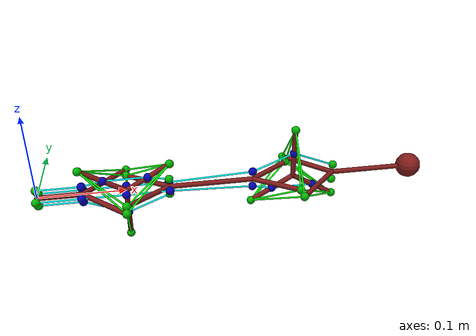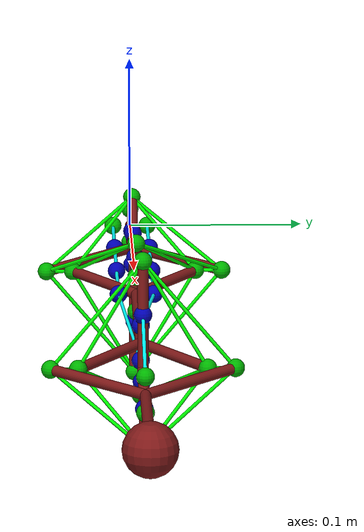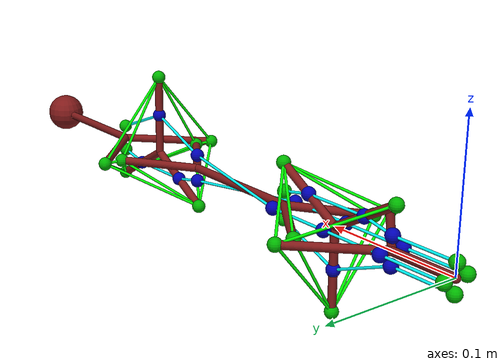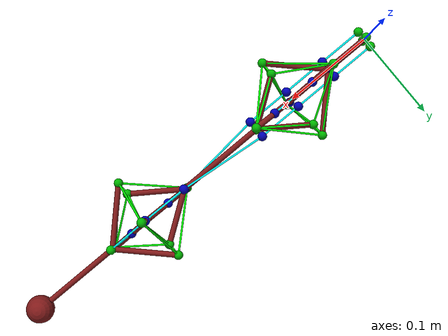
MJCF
<!-- Antoine Vincent Martin
-->

<mujoco model="Tensegrity Leg">
  <option timestep="0.005" iterations="50" integrator="RK4" tolerance="1e-10"/>

  <default>
    <joint type="ball"/>
    <muscle ctrllimited="true" ctrlrange="-1000 1000"/>
    <geom size="0.003" mass="0.05" rgba=".5 .1 .1 1"/>
    <site size="0.005" rgba="0 .7 0 1"/>
    <tendon rgba="0 1 0 1" stiffness="1000" damping="15"/>
  </default>

  <asset>
    <texture name="texplane" type="2d" builtin="checker" rgb1=".25 .25 .25" rgb2=".28 .28 .28" width="512" height="512" markrgb=".8 .8 .8"/>
    <texture name="skybox" type="skybox" builtin="gradient" rgb1="1 1 1" rgb2="1 1 1" width="800" height="800" mark="none" markrgb="1 1 1"/>
		<material name="matplane" reflectance="0.1" texture="texplane" texrepeat="1 1" texuniform="true"/>
  </asset>

  <worldbody>
    <light directional="true" diffuse=".8 .8 .8" specular=".2 .2 .2" pos="0 0 5" dir="0 0 -1"/>

    <!--FORK-->
    <geom type="capsule" fromto="0    0 0  0.05 0    0"/>
    <geom type="capsule" fromto="0.05 0 0  0.1  0.05 0"/>
    <geom type="capsule" fromto="0.05 0 0  0.1 -0.05 0"/>

    <!--QUAD FORK START-->
    <site name="y0_0" pos="0  0.01  0   "/>
    <site name="y0_1" pos="0 -0.01  0   "/>
    <site name="y0_2" pos="0  0     0.01"/>
    <site name="y0_3" pos="0  0    -0.01"/>

    <!--QUAD FORK MIDDLE-->
    <site name="y0_4" pos="0.05  0.01  0   " rgba="0 0 .7 1"/>
    <site name="y0_5" pos="0.05 -0.01  0   " rgba="0 0 .7 1"/>
    <site name="y0_6" pos="0.05  0     0.01" rgba="0 0 .7 1"/>
    <site name="y0_7" pos="0.05  0    -0.01" rgba="0 0 .7 1"/>

    <!--QUAD FORK END-->
    <site name="y0_8" pos="0.1  0.05 0"/>
    <site name="y0_9" pos="0.1 -0.05 0"/>

    <body pos="0.1 0 0">
      <joint type="free"/>
      <geom type="capsule" fromto="0 0 0   0.05156 0  0.03"/>
      <geom type="capsule" fromto="0 0 0   0       0 -0.06"/>
      <geom type="capsule" fromto="0 0 0  -0.05156 0  0.03"/>

      <site name="x0_1"  pos=" 0.05156 0  0.03 "/>
      <site name="x0_2"  pos=" 0       0 -0.06 "/>
      <site name="x0_3"  pos="-0.05156 0  0.03 "/>

      <!--STAR MUSCLE'S TENDONS VIAS-->
      <site name="x0_0v" pos=" 0       -0.01  0    " rgba="0 0 .7 1"/>
      <site name="x0_1v" pos=" 0        0.01  0    " rgba="0 0 .7 1"/>
      <site name="x0_2v" pos=" 0.02578  0     0.015" rgba="0 0 .7 1"/>
      <site name="x0_3v" pos=" 0        0    -0.03 " rgba="0 0 .7 1"/>
      <site name="x0_4v" pos="-0.02578  0     0.015" rgba="0 0 .7 1"/>
    </body>

    <body pos="0.25 0 0" euler="0 0 180">
      <joint type="free"/>
      <geom type="capsule" fromto="0   0 0   0.1   0     0"/>
      <geom type="capsule" fromto="0.1 0 0   0.15  0.035 0"/>
      <geom type="capsule" fromto="0.1 0 0   0.15 -0.035 0"/>
      <geom type="capsule" fromto="0   0 0  -0.05  0.035 0"/>
      <geom type="capsule" fromto="0   0 0  -0.05 -0.035 0"/>

      <!--QUAD FORK MIDDLE-->
      <site name="y1_4" pos="0.1  0.01  0   " rgba="0 0 .7 1"/>
      <site name="y1_5" pos="0.1 -0.01  0   " rgba="0 0 .7 1"/>
      <site name="y1_6" pos="0.1  0     0.01"/>
      <site name="y1_7" pos="0.1  0    -0.01"/>
      <site name="y1_8" pos="0    0     0.01" rgba="0 0 .7 1"/>
      <site name="y1_9" pos="0    0    -0.01" rgba="0 0 .7 1"/>

      <!--QUAD FORK END-->
      <site name="y1_A" pos=" 0.15  0.035 0"/>
      <site name="y1_B" pos=" 0.15 -0.035 0"/>
      <site name="y1_C" pos="-0.05  0.035 0"/>
      <site name="y1_D" pos="-0.05 -0.035 0"/>
    </body>

    <body pos="0.3 0 0" euler="180 0 0">
      <joint type="free"/>
      <geom type="capsule" fromto="0 0 0   0.05156 0  0.03"/>
      <geom type="capsule" fromto="0 0 0   0       0 -0.06"/>
      <geom type="capsule" fromto="0 0 0  -0.05156 0  0.03"/>

      <site name="x1_1"  pos=" 0.05156 0  0.03 "/>
      <site name="x1_2"  pos=" 0       0 -0.06 "/>
      <site name="x1_3"  pos="-0.05156 0  0.03 "/>

      <!--STAR MUSCLE'S TENDONS VIAS-->
      <site name="x1_2v" pos=" 0.02578  0     0.015" rgba="0 0 .7 1"/>
      <site name="x1_3v" pos=" 0        0    -0.03 " rgba="0 0 .7 1"/>
      <site name="x1_4v" pos="-0.02578  0     0.015" rgba="0 0 .7 1"/>
    </body>

    <body pos="0.45 0 0" euler="0 0 180">
      <joint type="free"/>
      <geom type="capsule" fromto="0   0 0  0.1   0    0"/>
      <geom type="capsule" fromto="0.1 0 0  0.15  0.05 0"/>
      <geom type="capsule" fromto="0.1 0 0  0.15 -0.05 0"/>
      <geom type="sphere"  pos="0 0 0" size="0.015"/>

      <!--QUAD FORK END-->
      <site name="y2_0" pos=" 0.15  0.05 0"/>
      <site name="y2_1" pos=" 0.15 -0.05 0"/>

      <!--QUAD FORK MIDDLE-->
      <site name="y2_2" pos="0.1  0     0.01"/>
      <site name="y2_3" pos="0.1  0    -0.01"/>
    </body>
  </worldbody>

  <tendon>
    <spatial limited="true" range="-0.01 0.01" group="0" name="J0_0" width="0.001">
      <site site="x0_1"/> <site site="y0_8"/>
    </spatial>
    <spatial limited="true" range="-0.01 0.01" group="0" name="J0_1" width="0.001">
      <site site="x0_1"/> <site site="y0_9"/>
    </spatial>
    <spatial limited="true" range="-0.01 0.01" group="0" name="J0_2" width="0.001">
      <site site="x0_1"/> <site site="y1_A"/>
    </spatial>
    <spatial limited="true" range="-0.01 0.01" group="0" name="J0_3" width="0.001">
      <site site="x0_1"/> <site site="y1_B"/>
    </spatial>

    <spatial limited="true" range="-0.01 0.01" group="0" name="J0_4" width="0.001">
      <site site="x0_2"/> <site site="y0_8"/>
    </spatial>
    <spatial limited="true" range="-0.01 0.01" group="0" name="J0_5" width="0.001">
      <site site="x0_2"/> <site site="y0_9"/>
    </spatial>
    <spatial limited="true" range="-0.01 0.01" group="0" name="J0_6" width="0.001">
      <site site="x0_2"/> <site site="y1_A"/>
    </spatial>
    <spatial limited="true" range="-0.01 0.01" group="0" name="J0_7" width="0.001">
      <site site="x0_2"/> <site site="y1_B"/>
    </spatial>

    <spatial limited="true" range="-0.01 0.01" group="0" name="J0_8" width="0.001">
      <site site="x0_3"/> <site site="y0_8"/>
    </spatial>
    <spatial limited="true" range="-0.01 0.01" group="0" name="J0_9" width="0.001">
      <site site="x0_3"/> <site site="y0_9"/>
    </spatial>
    <spatial limited="true" range="-0.01 0.01" group="0" name="J0_A" width="0.001">
      <site site="x0_3"/> <site site="y1_A"/>
    </spatial>
    <spatial limited="true" range="-0.01 0.01" group="0" name="J0_B" width="0.001">
      <site site="x0_3"/> <site site="y1_B"/>
    </spatial>

    <spatial limited="true" range="-0.01 0.01" group="0" name="J1_0" width="0.001">
      <site site="x1_1"/> <site site="y2_0"/>
    </spatial>
    <spatial limited="true" range="-0.01 0.01" group="0" name="J1_1" width="0.001">
      <site site="x1_1"/> <site site="y2_1"/>
    </spatial>
    <spatial limited="true" range="-0.01 0.01" group="0" name="J1_2" width="0.001">
      <site site="x1_1"/> <site site="y1_C"/>
    </spatial>
    <spatial limited="true" range="-0.01 0.01" group="0" name="J1_3" width="0.001">
      <site site="x1_1"/> <site site="y1_D"/>
    </spatial>

    <spatial limited="true" range="-0.01 0.01" group="0" name="J1_4" width="0.001">
      <site site="x1_2"/> <site site="y2_0"/>
    </spatial>
    <spatial limited="true" range="-0.01 0.01" group="0" name="J1_5" width="0.001">
      <site site="x1_2"/> <site site="y2_1"/>
    </spatial>
    <spatial limited="true" range="-0.01 0.01" group="0" name="J1_6" width="0.001">
      <site site="x1_2"/> <site site="y1_C"/>
    </spatial>
    <spatial limited="true" range="-0.01 0.01" group="0" name="J1_7" width="0.001">
      <site site="x1_2"/> <site site="y1_D"/>
    </spatial>

    <spatial limited="true" range="-0.01 0.01" group="0" name="J1_8" width="0.001">
      <site site="x1_3"/> <site site="y2_0"/>
    </spatial>
    <spatial limited="true" range="-0.01 0.01" group="0" name="J1_9" width="0.001">
      <site site="x1_3"/> <site site="y2_1"/>
    </spatial>
    <spatial limited="true" range="-0.01 0.01" group="0" name="J1_A" width="0.001">
      <site site="x1_3"/> <site site="y1_C"/>
    </spatial>
    <spatial limited="true" range="-0.01 0.01" group="0" name="J1_B" width="0.001">
      <site site="x1_3"/> <site site="y1_D"/>
    </spatial>

    <spatial limited="true" range="-0.01 0.01" group="0" name="J1_C" width="0.001">
      <site site="y0_8"/> <site site="y1_B"/>
    </spatial>
    <spatial limited="true" range="-0.01 0.01" group="0" name="J1_D" width="0.001">
      <site site="y0_9"/> <site site="y1_A"/>
    </spatial>

    <spatial limited="true" range="-0.01 0.01" group="0" name="J2_C" width="0.001">
      <site site="y2_0"/> <site site="y1_C"/>
    </spatial>
    <spatial limited="true" range="-0.01 0.01" group="0" name="J2_D" width="0.001">
      <site site="y2_1"/> <site site="y1_D"/>
    </spatial>

    <spatial group="1" rgba="0 2 5 1" stiffness="650" damping="10" name="M0_0" width="0.001">
      <site site="y0_2"/> <site site="y0_6"/> <site site="x0_4v"/> <site site="x0_2v"/> <site site="y1_6"/>
    </spatial>
    <spatial group="1" rgba="0 2 5 1" stiffness="650" damping="10" name="M0_1" width="0.001">
      <site site="y0_3"/> <site site="y0_7"/> <site site="x0_3v"/> <site site="y1_7"/>
    </spatial>
    <spatial group="1" rgba="0 2 5 1" stiffness="650" damping="10" name="M1_0" width="0.001">
      <site site="y0_0"/> <site site="y0_4"/> <site site="x0_1v"/> <site site="y1_5"/> <site site="y1_8"/> <site site="x1_3v"/> <site site="y2_2"/>
    </spatial>
    <spatial group="1" rgba="0 2 5 1" stiffness="650" damping="10" name="M1_1" width="0.001">
      <site site="y0_1"/> <site site="y0_5"/> <site site="x0_0v"/> <site site="y1_4"/> <site site="y1_9"/> <site site="x1_4v"/> <site site="x1_2v"/> <site site="y2_3"/>
    </spatial>
  </tendon>

  <actuator>
    <muscle name="M0_0" tendon="M0_0" ctrllimited="false" lengthrange="-10.15 10.25" forcelimited="true" forcerange="-20 20" range="0.7 1.3"/>
    <muscle name="M0_1" tendon="M0_1" ctrllimited="false" lengthrange="-10.15 10.25" forcelimited="true" forcerange="-20 20" range="0.7 1.3"/>
    <muscle name="M1_0" tendon="M1_0" ctrllimited="false" lengthrange="-10.15 10.25" forcelimited="true" forcerange="-20 20" range="0.7 1.3"/>
    <muscle name="M1_1" tendon="M1_1" ctrllimited="false" lengthrange="-10.15 10.25" forcelimited="true" forcerange="-20 20" range="0.7 1.3"/>
  </actuator>
</mujoco>
